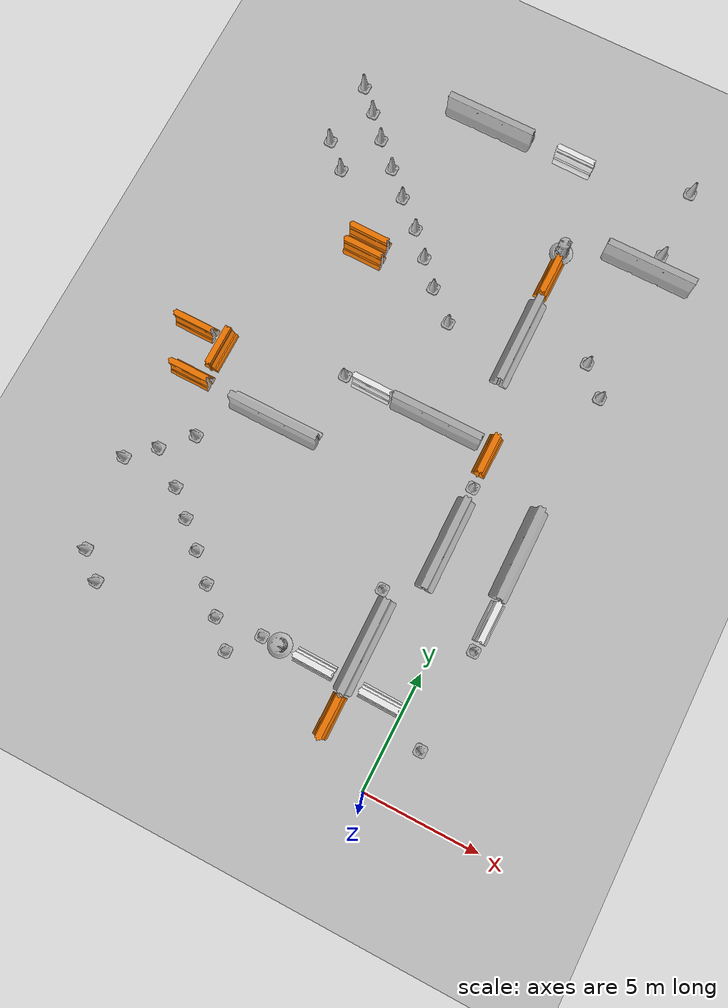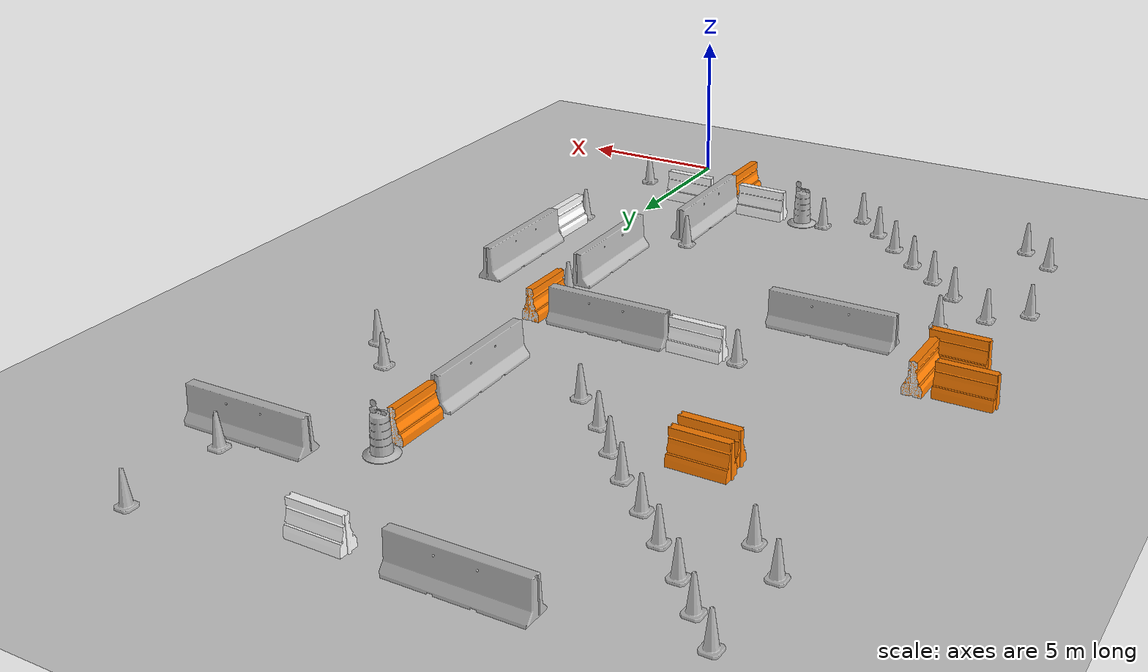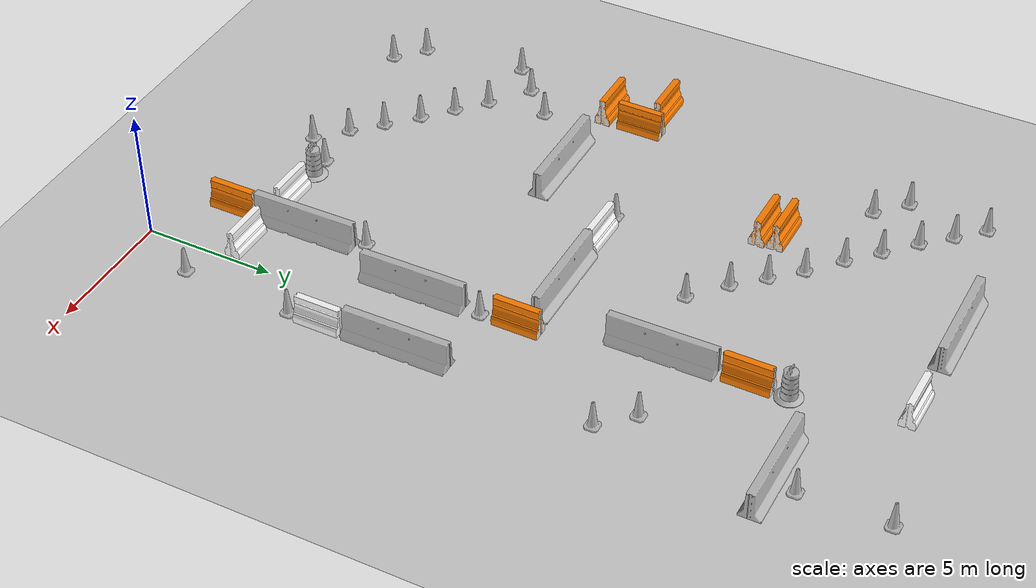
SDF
<sdf version="1.6">
 <world name="default">
  <model name="ground_plane">
   <static>1</static>
   <link name="link">
    <collision name="collision">
     <geometry><plane><normal>0 0 1</normal><size>100 100</size></plane></geometry>
     <surface>
      <contact><collide_bitmask>65535</collide_bitmask></contact>
      <friction><ode><mu>100</mu><mu2>50</mu2></ode></friction>
     </surface>
    </collision>
    <visual name="visual">
     <cast_shadows>0</cast_shadows>
     <geometry><plane><normal>0 0 1</normal><size>100 100</size></plane></geometry>
     <material>
      <script><uri>file://media/materials/scripts/gazebo.material</uri><name>Gazebo/Grey</name></script>
     </material>
    </visual>
   </link>
  </model>
  <model name="jersey_barrier_clone_clone_clone_0_clone">
   <static>1</static>
   <link name="link">
    <visual name="visual">
     <geometry><mesh><uri>model://jersey_barrier/meshes/jersey_barrier.dae</uri></mesh></geometry>
    </visual>
    <collision name="upright">
     <pose>0 0 0.5715 0 -0 0</pose>
     <geometry><box><size>4.06542 0.3063 1.143</size></box></geometry>
    </collision>
    <collision name="base">
     <pose>0 0 0.032258 0 -0 0</pose>
     <geometry><box><size>4.06542 0.8107 0.064516</size></box></geometry>
    </collision>
    <collision name="base2">
     <pose>0 0 0.1 0 -0 0</pose>
     <geometry><box><size>4.06542 0.65 0.1</size></box></geometry>
    </collision>
    <collision name="base3">
     <pose>0 0 0.2 0 -0 0</pose>
     <geometry><box><size>4.06542 0.5 0.1</size></box></geometry>
    </collision>
    <collision name="left-angle">
     <pose>0 -0.224 0.2401 0.9 -0 0</pose>
     <geometry><box><size>4.06542 0.5 0.064516</size></box></geometry>
    </collision>
    <collision name="right-angle">
     <pose>0 0.224 0.2401 -0.9 0 0</pose>
     <geometry><box><size>4.06542 0.5 0.064516</size></box></geometry>
    </collision>
   </link>
   <pose>-7.93875 27.5109 0 0 -0 0</pose>
  </model>
  <model name="drc_practice_white_jersey_barrier_clone_clone_clone_clone_clone">
   <static>1</static>
   <link name="link">
    <visual name="visual">
     <geometry>
      <mesh><uri>model://drc_practice_white_jersey_barrier/meshes/jersey_barrier.dae</uri></mesh>
     </geometry>
    </visual>
    <collision name="collision">
     <geometry>
      <mesh><uri>model://drc_practice_white_jersey_barrier/meshes/jersey_barrier.dae</uri></mesh>
     </geometry>
    </collision>
   </link>
   <pose>-3.85344 27.4585 0 0 0 -1.58176</pose>
  </model>
  <model name="Construction Cone_0_clone_0_clone_clone">
   <static>1</static>
   <link name="link">
    <collision name="collision">
     <geometry>
      <mesh><scale>10 10 10</scale><uri>model://construction_cone/meshes/construction_cone.dae</uri></mesh>
     </geometry>
    </collision>
    <visual name="visual">
     <geometry>
      <mesh><scale>10 10 10</scale><uri>model://construction_cone/meshes/construction_cone.dae</uri></mesh>
     </geometry>
    </visual>
    <inertial>
     <inertia><ixx>1</ixx><ixy>0</ixy><ixz>0</ixz><iyy>1</iyy><iyz>0</iyz><izz>1</izz></inertia>
     <mass>1</mass>
    </inertial>
   </link>
   <pose>1.27357 28.5519 -0 0 -0 0</pose>
  </model>
  <model name="Construction Cone_0_clone_0_clone_clone_clone">
   <static>1</static>
   <link name="link">
    <collision name="collision">
     <geometry>
      <mesh><scale>10 10 10</scale><uri>model://construction_cone/meshes/construction_cone.dae</uri></mesh>
     </geometry>
    </collision>
    <visual name="visual">
     <geometry>
      <mesh><scale>10 10 10</scale><uri>model://construction_cone/meshes/construction_cone.dae</uri></mesh>
     </geometry>
    </visual>
    <inertial>
     <inertia><ixx>1</ixx><ixy>0</ixy><ixz>0</ixz><iyy>1</iyy><iyz>0</iyz><izz>1</izz></inertia>
     <mass>1</mass>
    </inertial>
   </link>
   <pose>1.32461 25.334 -0 0 -0 0</pose>
  </model>
  <model name="jersey_barrier_clone_clone_clone_0_clone_clone">
   <static>1</static>
   <link name="link">
    <visual name="visual">
     <geometry><mesh><uri>model://jersey_barrier/meshes/jersey_barrier.dae</uri></mesh></geometry>
    </visual>
    <collision name="upright">
     <pose>0 0 0.5715 0 -0 0</pose>
     <geometry><box><size>4.06542 0.3063 1.143</size></box></geometry>
    </collision>
    <collision name="base">
     <pose>0 0 0.032258 0 -0 0</pose>
     <geometry><box><size>4.06542 0.8107 0.064516</size></box></geometry>
    </collision>
    <collision name="base2">
     <pose>0 0 0.1 0 -0 0</pose>
     <geometry><box><size>4.06542 0.65 0.1</size></box></geometry>
    </collision>
    <collision name="base3">
     <pose>0 0 0.2 0 -0 0</pose>
     <geometry><box><size>4.06542 0.5 0.1</size></box></geometry>
    </collision>
    <collision name="left-angle">
     <pose>0 -0.224 0.2401 0.9 -0 0</pose>
     <geometry><box><size>4.06542 0.5 0.064516</size></box></geometry>
    </collision>
    <collision name="right-angle">
     <pose>0 0.224 0.2401 -0.9 0 0</pose>
     <geometry><box><size>4.06542 0.5 0.064516</size></box></geometry>
    </collision>
   </link>
   <pose>1.0354 24.4748 0 0 -0 0</pose>
  </model>
  <model name="jersey_barrier_clone_clone_clone_clone_clone_clone_clone_clone_clone">
   <static>1</static>
   <link name="link">
    <visual name="visual">
     <geometry><mesh><uri>model://jersey_barrier/meshes/jersey_barrier.dae</uri></mesh></geometry>
    </visual>
    <collision name="upright">
     <pose>0 0 0.5715 0 -0 0</pose>
     <geometry><box><size>4.06542 0.3063 1.143</size></box></geometry>
    </collision>
    <collision name="base">
     <pose>0 0 0.032258 0 -0 0</pose>
     <geometry><box><size>4.06542 0.8107 0.064516</size></box></geometry>
    </collision>
    <collision name="base2">
     <pose>0 0 0.1 0 -0 0</pose>
     <geometry><box><size>4.06542 0.65 0.1</size></box></geometry>
    </collision>
    <collision name="base3">
     <pose>0 0 0.2 0 -0 0</pose>
     <geometry><box><size>4.06542 0.5 0.1</size></box></geometry>
    </collision>
    <collision name="left-angle">
     <pose>0 -0.224 0.2401 0.9 -0 0</pose>
     <geometry><box><size>4.06542 0.5 0.064516</size></box></geometry>
    </collision>
    <collision name="right-angle">
     <pose>0 0.224 0.2401 -0.9 0 0</pose>
     <geometry><box><size>4.06542 0.5 0.064516</size></box></geometry>
    </collision>
   </link>
   <pose>1.3892 10.9889 0 0 0 -1.56391</pose>
  </model>
  <model name="drc_practice_white_jersey_barrier_clone_clone_clone_0_clone_0_clone_clone_0_clone">
   <static>1</static>
   <link name="link">
    <visual name="visual">
     <geometry>
      <mesh><uri>model://drc_practice_white_jersey_barrier/meshes/jersey_barrier.dae</uri></mesh>
     </geometry>
    </visual>
    <collision name="collision">
     <geometry>
      <mesh><uri>model://drc_practice_white_jersey_barrier/meshes/jersey_barrier.dae</uri></mesh>
     </geometry>
    </collision>
   </link>
   <pose>1.49 7.98868 0 0 -0 3.13979</pose>
  </model>
  <model name="Construction Cone_0_clone_0_clone_clone_clone_clone_clone_3_clone_0_clone_clone_clone_1_clone_1_clone_5_clone">
   <static>1</static>
   <link name="link">
    <collision name="collision">
     <geometry>
      <mesh><scale>10 10 10</scale><uri>model://construction_cone/meshes/construction_cone.dae</uri></mesh>
     </geometry>
    </collision>
    <visual name="visual">
     <geometry>
      <mesh><scale>10 10 10</scale><uri>model://construction_cone/meshes/construction_cone.dae</uri></mesh>
     </geometry>
    </visual>
    <inertial>
     <inertia><ixx>1</ixx><ixy>0</ixy><ixz>0</ixz><iyy>1</iyy><iyz>0</iyz><izz>1</izz></inertia>
     <mass>1</mass>
    </inertial>
   </link>
   <pose>1.47181 6.73869 -0 0 -1e-06 0</pose>
  </model>
  <model name="jersey_barrier_clone_clone_clone_clone_clone_clone_clone_clone_clone_clone">
   <static>1</static>
   <link name="link">
    <visual name="visual">
     <geometry><mesh><uri>model://jersey_barrier/meshes/jersey_barrier.dae</uri></mesh></geometry>
    </visual>
    <collision name="upright">
     <pose>0 0 0.5715 0 -0 0</pose>
     <geometry><box><size>4.06542 0.3063 1.143</size></box></geometry>
    </collision>
    <collision name="base">
     <pose>0 0 0.032258 0 -0 0</pose>
     <geometry><box><size>4.06542 0.8107 0.064516</size></box></geometry>
    </collision>
    <collision name="base2">
     <pose>0 0 0.1 0 -0 0</pose>
     <geometry><box><size>4.06542 0.65 0.1</size></box></geometry>
    </collision>
    <collision name="base3">
     <pose>0 0 0.2 0 -0 0</pose>
     <geometry><box><size>4.06542 0.5 0.1</size></box></geometry>
    </collision>
    <collision name="left-angle">
     <pose>0 -0.224 0.2401 0.9 -0 0</pose>
     <geometry><box><size>4.06542 0.5 0.064516</size></box></geometry>
    </collision>
    <collision name="right-angle">
     <pose>0 0.224 0.2401 -0.9 0 0</pose>
     <geometry><box><size>4.06542 0.5 0.064516</size></box></geometry>
    </collision>
   </link>
   <pose>-1.43507 10.0191 0 0 0 -1.56391</pose>
  </model>
  <model name="drc_practice_organge_jersey_barrier_clone_clone_0_clone_0_clone_2_clone">
   <static>1</static>
   <link name="link">
    <visual name="visual">
     <geometry>
      <mesh><uri>model://drc_practice_orange_jersey_barrier/meshes/jersey_barrier.dae</uri></mesh>
     </geometry>
    </visual>
    <collision name="collision">
     <geometry>
      <mesh><uri>model://drc_practice_orange_jersey_barrier/meshes/jersey_barrier.dae</uri></mesh>
     </geometry>
    </collision>
   </link>
   <pose>-1.5104 14.0475 0 0 -0 0</pose>
  </model>
  <model name="Construction Cone_0_clone_0_clone_clone_clone_clone_clone_3_clone_0_clone_clone_clone_1_clone_1_clone_5_clone_0_clone">
   <static>1</static>
   <link name="link">
    <collision name="collision">
     <geometry>
      <mesh><scale>10 10 10</scale><uri>model://construction_cone/meshes/construction_cone.dae</uri></mesh>
     </geometry>
    </collision>
    <visual name="visual">
     <geometry>
      <mesh><scale>10 10 10</scale><uri>model://construction_cone/meshes/construction_cone.dae</uri></mesh>
     </geometry>
    </visual>
    <inertial>
     <inertia><ixx>1</ixx><ixy>0</ixy><ixz>0</ixz><iyy>1</iyy><iyz>0</iyz><izz>1</izz></inertia>
     <mass>1</mass>
    </inertial>
   </link>
   <pose>-1.45604 12.6179 -0 0 -0 0</pose>
  </model>
  <model name="jersey_barrier_clone_clone_clone_0_clone_clone_clone_clone_0">
   <static>1</static>
   <link name="link">
    <visual name="visual">
     <geometry><mesh><uri>model://jersey_barrier/meshes/jersey_barrier.dae</uri></mesh></geometry>
    </visual>
    <collision name="upright">
     <pose>0 0 0.5715 0 -0 0</pose>
     <geometry><box><size>4.06542 0.3063 1.143</size></box></geometry>
    </collision>
    <collision name="base">
     <pose>0 0 0.032258 0 -0 0</pose>
     <geometry><box><size>4.06542 0.8107 0.064516</size></box></geometry>
    </collision>
    <collision name="base2">
     <pose>0 0 0.1 0 -0 0</pose>
     <geometry><box><size>4.06542 0.65 0.1</size></box></geometry>
    </collision>
    <collision name="base3">
     <pose>0 0 0.2 0 -0 0</pose>
     <geometry><box><size>4.06542 0.5 0.1</size></box></geometry>
    </collision>
    <collision name="left-angle">
     <pose>0 -0.224 0.2401 0.9 -0 0</pose>
     <geometry><box><size>4.06542 0.5 0.064516</size></box></geometry>
    </collision>
    <collision name="right-angle">
     <pose>0 0.224 0.2401 -0.9 0 0</pose>
     <geometry><box><size>4.06542 0.5 0.064516</size></box></geometry>
    </collision>
   </link>
   <pose>-4.03544 14.47 0 0 -0 0</pose>
  </model>
  <model name="drc_practice_white_jersey_barrier_clone_clone_clone_clone_clone_clone_clone_clone_clone_clone">
   <static>1</static>
   <link name="link">
    <visual name="visual">
     <geometry>
      <mesh><uri>model://drc_practice_white_jersey_barrier/meshes/jersey_barrier.dae</uri></mesh>
     </geometry>
    </visual>
    <collision name="collision">
     <geometry>
      <mesh><uri>model://drc_practice_white_jersey_barrier/meshes/jersey_barrier.dae</uri></mesh>
     </geometry>
    </collision>
   </link>
   <pose>-7.02001 14.464 0 0 0 -1.58176</pose>
  </model>
  <model name="Construction Cone_0_clone_0_clone_clone_clone_clone_clone_3_clone_0_clone_clone_clone_1_clone_1_clone_5_clone_0_clone_clone">
   <static>1</static>
   <link name="link">
    <collision name="collision">
     <geometry>
      <mesh><scale>10 10 10</scale><uri>model://construction_cone/meshes/construction_cone.dae</uri></mesh>
     </geometry>
    </collision>
    <visual name="visual">
     <geometry>
      <mesh><scale>10 10 10</scale><uri>model://construction_cone/meshes/construction_cone.dae</uri></mesh>
     </geometry>
    </visual>
    <inertial>
     <inertia><ixx>1</ixx><ixy>0</ixy><ixz>0</ixz><iyy>1</iyy><iyz>0</iyz><izz>1</izz></inertia>
     <mass>1</mass>
    </inertial>
   </link>
   <pose>-8.33243 14.4629 -1e-05 -1e-06 0 0</pose>
  </model>
  <model name="jersey_barrier_clone_clone_clone_clone_clone_clone_clone_clone_clone_clone_clone">
   <static>1</static>
   <link name="link">
    <visual name="visual">
     <geometry><mesh><uri>model://jersey_barrier/meshes/jersey_barrier.dae</uri></mesh></geometry>
    </visual>
    <collision name="upright">
     <pose>0 0 0.5715 0 -0 0</pose>
     <geometry><box><size>4.06542 0.3063 1.143</size></box></geometry>
    </collision>
    <collision name="base">
     <pose>0 0 0.032258 0 -0 0</pose>
     <geometry><box><size>4.06542 0.8107 0.064516</size></box></geometry>
    </collision>
    <collision name="base2">
     <pose>0 0 0.1 0 -0 0</pose>
     <geometry><box><size>4.06542 0.65 0.1</size></box></geometry>
    </collision>
    <collision name="base3">
     <pose>0 0 0.2 0 -0 0</pose>
     <geometry><box><size>4.06542 0.5 0.1</size></box></geometry>
    </collision>
    <collision name="left-angle">
     <pose>0 -0.224 0.2401 0.9 -0 0</pose>
     <geometry><box><size>4.06542 0.5 0.064516</size></box></geometry>
    </collision>
    <collision name="right-angle">
     <pose>0 0.224 0.2401 -0.9 0 0</pose>
     <geometry><box><size>4.06542 0.5 0.064516</size></box></geometry>
    </collision>
   </link>
   <pose>-2.48944 4.9764 0 0 0 -1.56391</pose>
  </model>
  <model name="Construction Cone_0_clone_0_clone_clone_clone_clone_clone_3_clone_0_clone_clone_clone_1_clone_1_clone_5_clone_clone">
   <static>1</static>
   <link name="link">
    <collision name="collision">
     <geometry>
      <mesh><scale>10 10 10</scale><uri>model://construction_cone/meshes/construction_cone.dae</uri></mesh>
     </geometry>
    </collision>
    <visual name="visual">
     <geometry>
      <mesh><scale>10 10 10</scale><uri>model://construction_cone/meshes/construction_cone.dae</uri></mesh>
     </geometry>
    </visual>
    <inertial>
     <inertia><ixx>1</ixx><ixy>0</ixy><ixz>0</ixz><iyy>1</iyy><iyz>0</iyz><izz>1</izz></inertia>
     <mass>1</mass>
    </inertial>
   </link>
   <pose>-2.8795 7.26415 -0 0 -0 0</pose>
  </model>
  <model name="drc_practice_organge_jersey_barrier_clone_clone_0_clone_0_clone_0_clone">
   <static>1</static>
   <link name="link">
    <visual name="visual">
     <geometry>
      <mesh><uri>model://drc_practice_orange_jersey_barrier/meshes/jersey_barrier.dae</uri></mesh>
     </geometry>
    </visual>
    <collision name="collision">
     <geometry>
      <mesh><uri>model://drc_practice_orange_jersey_barrier/meshes/jersey_barrier.dae</uri></mesh>
     </geometry>
    </collision>
   </link>
   <pose>-2.46701 1.9731 0 0 -0 0</pose>
  </model>
  <model name="drc_practice_white_jersey_barrier_clone_clone_clone_clone_clone_clone_clone_clone_clone_clone_0">
   <static>1</static>
   <link name="link">
    <visual name="visual">
     <geometry>
      <mesh><uri>model://drc_practice_white_jersey_barrier/meshes/jersey_barrier.dae</uri></mesh>
     </geometry>
    </visual>
    <collision name="collision">
     <geometry>
      <mesh><uri>model://drc_practice_white_jersey_barrier/meshes/jersey_barrier.dae</uri></mesh>
     </geometry>
    </collision>
   </link>
   <pose>-0.998453 3.39951 0 0 0 -1.58176</pose>
  </model>
  <model name="Construction Cone_0_clone_0_clone_clone_clone_clone_clone_3_clone_0_clone_clone_clone_1_clone_1_clone_clone_clone_0_clone_0">
   <static>1</static>
   <link name="link">
    <collision name="collision">
     <geometry>
      <mesh><scale>10 10 10</scale><uri>model://construction_cone/meshes/construction_cone.dae</uri></mesh>
     </geometry>
    </collision>
    <visual name="visual">
     <geometry>
      <mesh><scale>10 10 10</scale><uri>model://construction_cone/meshes/construction_cone.dae</uri></mesh>
     </geometry>
    </visual>
    <inertial>
     <inertia><ixx>1</ixx><ixy>0</ixy><ixz>0</ixz><iyy>1</iyy><iyz>0</iyz><izz>1</izz></inertia>
     <mass>1</mass>
    </inertial>
   </link>
   <pose>1.28237 2.39427 -0 0 -1e-06 -0.001073</pose>
  </model>
  <model name="drc_practice_organge_jersey_barrier_clone_clone_0_clone">
   <static>1</static>
   <link name="link">
    <visual name="visual">
     <geometry>
      <mesh><uri>model://drc_practice_orange_jersey_barrier/meshes/jersey_barrier.dae</uri></mesh>
     </geometry>
    </visual>
    <collision name="collision">
     <geometry>
      <mesh><uri>model://drc_practice_orange_jersey_barrier/meshes/jersey_barrier.dae</uri></mesh>
     </geometry>
    </collision>
   </link>
   <pose>-2.53044 22.104 0 0 -0 0</pose>
  </model>
  <model name="Construction Barrel_clone_clone_0_clone_clone_1_clone">
   <static>1</static>
   <link name="link">
    <inertial>
     <pose>0 0 0.4 0 -0 0</pose>
     <mass>500</mass>
     <inertia><ixx>51.2096</ixx><iyy>51.2096</iyy><izz>25</izz><ixy>0</ixy><ixz>0</ixz><iyz>0</iyz></inertia>
    </inertial>
    <collision name="collision">
     <geometry><mesh><uri>model://construction_barrel/meshes/construction_barrel.dae</uri></mesh></geometry>
    </collision>
    <visual name="visual">
     <geometry><mesh><uri>model://construction_barrel/meshes/construction_barrel.dae</uri></mesh></geometry>
    </visual>
   </link>
   <pose>-2.5725 23.5251 -0 0 0 -0.001453</pose>
  </model>
  <model name="jersey_barrier_clone_clone_clone_clone_clone_clone_clone_clone_clone_clone_clone_0">
   <static>1</static>
   <link name="link">
    <visual name="visual">
     <geometry><mesh><uri>model://jersey_barrier/meshes/jersey_barrier.dae</uri></mesh></geometry>
    </visual>
    <collision name="upright">
     <pose>0 0 0.5715 0 -0 0</pose>
     <geometry><box><size>4.06542 0.3063 1.143</size></box></geometry>
    </collision>
    <collision name="base">
     <pose>0 0 0.032258 0 -0 0</pose>
     <geometry><box><size>4.06542 0.8107 0.064516</size></box></geometry>
    </collision>
    <collision name="base2">
     <pose>0 0 0.1 0 -0 0</pose>
     <geometry><box><size>4.06542 0.65 0.1</size></box></geometry>
    </collision>
    <collision name="base3">
     <pose>0 0 0.2 0 -0 0</pose>
     <geometry><box><size>4.06542 0.5 0.1</size></box></geometry>
    </collision>
    <collision name="left-angle">
     <pose>0 -0.224 0.2401 0.9 -0 0</pose>
     <geometry><box><size>4.06542 0.5 0.064516</size></box></geometry>
    </collision>
    <collision name="right-angle">
     <pose>0 0.224 0.2401 -0.9 0 0</pose>
     <geometry><box><size>4.06542 0.5 0.064516</size></box></geometry>
    </collision>
   </link>
   <pose>-2.47212 19.0029 0 0 0 -1.56391</pose>
  </model>
  <model name="Construction Cone_0_clone_0_clone_clone_clone_clone_clone_3_clone_0_clone_clone_clone_1_clone_1_clone_6_clone">
   <static>1</static>
   <link name="link">
    <collision name="collision">
     <geometry>
      <mesh><scale>10 10 10</scale><uri>model://construction_cone/meshes/construction_cone.dae</uri></mesh>
     </geometry>
    </collision>
    <visual name="visual">
     <geometry>
      <mesh><scale>10 10 10</scale><uri>model://construction_cone/meshes/construction_cone.dae</uri></mesh>
     </geometry>
    </visual>
    <inertial>
     <inertia><ixx>1</ixx><ixy>0</ixy><ixz>0</ixz><iyy>1</iyy><iyz>0</iyz><izz>1</izz></inertia>
     <mass>1</mass>
    </inertial>
   </link>
   <pose>0.500758 19.533 -0 0 -0 0</pose>
  </model>
  <model name="Construction Cone_0_clone_0_clone_clone_clone_clone_clone_3_clone_0_clone_clone_clone_1_clone_1_clone_6_clone_0">
   <static>1</static>
   <link name="link">
    <collision name="collision">
     <geometry>
      <mesh><scale>10 10 10</scale><uri>model://construction_cone/meshes/construction_cone.dae</uri></mesh>
     </geometry>
    </collision>
    <visual name="visual">
     <geometry>
      <mesh><scale>10 10 10</scale><uri>model://construction_cone/meshes/construction_cone.dae</uri></mesh>
     </geometry>
    </visual>
    <inertial>
     <inertia><ixx>1</ixx><ixy>0</ixy><ixz>0</ixz><iyy>1</iyy><iyz>0</iyz><izz>1</izz></inertia>
     <mass>1</mass>
    </inertial>
   </link>
   <pose>1.59266 18.4058 -0 0 -1e-06 0</pose>
  </model>
  <model name="Construction Cone_0_clone_0_clone_clone_clone_clone_clone_3_clone_0_clone_clone_clone_1_clone_1_clone_6_clone_clone">
   <static>1</static>
   <link name="link">
    <collision name="collision">
     <geometry>
      <mesh><scale>10 10 10</scale><uri>model://construction_cone/meshes/construction_cone.dae</uri></mesh>
     </geometry>
    </collision>
    <visual name="visual">
     <geometry>
      <mesh><scale>10 10 10</scale><uri>model://construction_cone/meshes/construction_cone.dae</uri></mesh>
     </geometry>
    </visual>
    <inertial>
     <inertia><ixx>1</ixx><ixy>0</ixy><ixz>0</ixz><iyy>1</iyy><iyz>0</iyz><izz>1</izz></inertia>
     <mass>1</mass>
    </inertial>
   </link>
   <pose>-5.51116 18.4911 -0 0 -1e-06 0</pose>
  </model>
  <model name="Construction Cone_0_clone_0_clone_clone_clone_clone_clone_3_clone_0_clone_clone_clone_1_clone_1_clone_6_clone_clone_0">
   <static>1</static>
   <link name="link">
    <collision name="collision">
     <geometry>
      <mesh><scale>10 10 10</scale><uri>model://construction_cone/meshes/construction_cone.dae</uri></mesh>
     </geometry>
    </collision>
    <visual name="visual">
     <geometry>
      <mesh><scale>10 10 10</scale><uri>model://construction_cone/meshes/construction_cone.dae</uri></mesh>
     </geometry>
    </visual>
    <inertial>
     <inertia><ixx>1</ixx><ixy>0</ixy><ixz>0</ixz><iyy>1</iyy><iyz>0</iyz><izz>1</izz></inertia>
     <mass>1</mass>
    </inertial>
   </link>
   <pose>-6.76308 19.5995 -0 -0 -0 -0</pose>
  </model>
  <model name="Construction Cone_0_clone_0_clone_clone_clone_clone_clone_3_clone_0_clone_clone_clone_1_clone_1_clone_6_clone_clone_1">
   <static>1</static>
   <link name="link">
    <collision name="collision">
     <geometry>
      <mesh><scale>10 10 10</scale><uri>model://construction_cone/meshes/construction_cone.dae</uri></mesh>
     </geometry>
    </collision>
    <visual name="visual">
     <geometry>
      <mesh><scale>10 10 10</scale><uri>model://construction_cone/meshes/construction_cone.dae</uri></mesh>
     </geometry>
    </visual>
    <inertial>
     <inertia><ixx>1</ixx><ixy>0</ixy><ixz>0</ixz><iyy>1</iyy><iyz>0</iyz><izz>1</izz></inertia>
     <mass>1</mass>
    </inertial>
   </link>
   <pose>-7.72198 20.6382 -0 0 -1e-06 0</pose>
  </model>
  <model name="Construction Cone_0_clone_0_clone_clone_clone_clone_clone_3_clone_0_clone_clone_clone_1_clone_1_clone_6_clone_clone_2">
   <static>1</static>
   <link name="link">
    <collision name="collision">
     <geometry>
      <mesh><scale>10 10 10</scale><uri>model://construction_cone/meshes/construction_cone.dae</uri></mesh>
     </geometry>
    </collision>
    <visual name="visual">
     <geometry>
      <mesh><scale>10 10 10</scale><uri>model://construction_cone/meshes/construction_cone.dae</uri></mesh>
     </geometry>
    </visual>
    <inertial>
     <inertia><ixx>1</ixx><ixy>0</ixy><ixz>0</ixz><iyy>1</iyy><iyz>0</iyz><izz>1</izz></inertia>
     <mass>1</mass>
    </inertial>
   </link>
   <pose>-8.65657 21.651 -0 0 -0 0</pose>
  </model>
  <model name="Construction Cone_0_clone_0_clone_clone_clone_clone_clone_3_clone_0_clone_clone_clone_1_clone_1_clone_6_clone_clone_3">
   <static>1</static>
   <link name="link">
    <collision name="collision">
     <geometry>
      <mesh><scale>10 10 10</scale><uri>model://construction_cone/meshes/construction_cone.dae</uri></mesh>
     </geometry>
    </collision>
    <visual name="visual">
     <geometry>
      <mesh><scale>10 10 10</scale><uri>model://construction_cone/meshes/construction_cone.dae</uri></mesh>
     </geometry>
    </visual>
    <inertial>
     <inertia><ixx>1</ixx><ixy>0</ixy><ixz>0</ixz><iyy>1</iyy><iyz>0</iyz><izz>1</izz></inertia>
     <mass>1</mass>
    </inertial>
   </link>
   <pose>-9.81088 22.6881 -0 0 -0 0</pose>
  </model>
  <model name="Construction Cone_0_clone_0_clone_clone_clone_clone_clone_3_clone_0_clone_clone_clone_1_clone_1_clone_6_clone_clone_4">
   <static>1</static>
   <link name="link">
    <collision name="collision">
     <geometry>
      <mesh><scale>10 10 10</scale><uri>model://construction_cone/meshes/construction_cone.dae</uri></mesh>
     </geometry>
    </collision>
    <visual name="visual">
     <geometry>
      <mesh><scale>10 10 10</scale><uri>model://construction_cone/meshes/construction_cone.dae</uri></mesh>
     </geometry>
    </visual>
    <inertial>
     <inertia><ixx>1</ixx><ixy>0</ixy><ixz>0</ixz><iyy>1</iyy><iyz>0</iyz><izz>1</izz></inertia>
     <mass>1</mass>
    </inertial>
   </link>
   <pose>-10.8431 23.7003 -0 -0 -0 -0</pose>
  </model>
  <model name="Construction Cone_0_clone_0_clone_clone_clone_clone_clone_3_clone_0_clone_clone_clone_1_clone_1_clone_6_clone_clone_5">
   <static>1</static>
   <link name="link">
    <collision name="collision">
     <geometry>
      <mesh><scale>10 10 10</scale><uri>model://construction_cone/meshes/construction_cone.dae</uri></mesh>
     </geometry>
    </collision>
    <visual name="visual">
     <geometry>
      <mesh><scale>10 10 10</scale><uri>model://construction_cone/meshes/construction_cone.dae</uri></mesh>
     </geometry>
    </visual>
    <inertial>
     <inertia><ixx>1</ixx><ixy>0</ixy><ixz>0</ixz><iyy>1</iyy><iyz>0</iyz><izz>1</izz></inertia>
     <mass>1</mass>
    </inertial>
   </link>
   <pose>-11.8995 24.7132 -0 -0 -0 -0</pose>
  </model>
  <model name="Construction Cone_0_clone_0_clone_clone_clone_clone_clone_3_clone_0_clone_clone_clone_1_clone_1_clone_6_clone_clone_6">
   <static>1</static>
   <link name="link">
    <collision name="collision">
     <geometry>
      <mesh><scale>10 10 10</scale><uri>model://construction_cone/meshes/construction_cone.dae</uri></mesh>
     </geometry>
    </collision>
    <visual name="visual">
     <geometry>
      <mesh><scale>10 10 10</scale><uri>model://construction_cone/meshes/construction_cone.dae</uri></mesh>
     </geometry>
    </visual>
    <inertial>
     <inertia><ixx>1</ixx><ixy>0</ixy><ixz>0</ixz><iyy>1</iyy><iyz>0</iyz><izz>1</izz></inertia>
     <mass>1</mass>
    </inertial>
   </link>
   <pose>-12.81 25.7033 -0 0 -0 0</pose>
  </model>
  <model name="Construction Cone_0_clone_0_clone_clone_clone_clone_clone_3_clone_0_clone_clone_clone_1_clone_1_clone_6_clone_clone_7">
   <static>1</static>
   <link name="link">
    <collision name="collision">
     <geometry>
      <mesh><scale>10 10 10</scale><uri>model://construction_cone/meshes/construction_cone.dae</uri></mesh>
     </geometry>
    </collision>
    <visual name="visual">
     <geometry>
      <mesh><scale>10 10 10</scale><uri>model://construction_cone/meshes/construction_cone.dae</uri></mesh>
     </geometry>
    </visual>
    <inertial>
     <inertia><ixx>1</ixx><ixy>0</ixy><ixz>0</ixz><iyy>1</iyy><iyz>0</iyz><izz>1</izz></inertia>
     <mass>1</mass>
    </inertial>
   </link>
   <pose>-13.7204 26.6445 -0 0 -0 0</pose>
  </model>
  <model name="Construction Cone_0_clone_0_clone_clone_clone_clone_clone_3_clone_0_clone_clone_clone_1_clone_1_clone_6_clone_clone_3_clone">
   <static>1</static>
   <link name="link">
    <collision name="collision">
     <geometry>
      <mesh><scale>10 10 10</scale><uri>model://construction_cone/meshes/construction_cone.dae</uri></mesh>
     </geometry>
    </collision>
    <visual name="visual">
     <geometry>
      <mesh><scale>10 10 10</scale><uri>model://construction_cone/meshes/construction_cone.dae</uri></mesh>
     </geometry>
    </visual>
    <inertial>
     <inertia><ixx>1</ixx><ixy>0</ixy><ixz>0</ixz><iyy>1</iyy><iyz>0</iyz><izz>1</izz></inertia>
     <mass>1</mass>
    </inertial>
   </link>
   <pose>-12.8057 22.6462 -0 0 -0 0</pose>
  </model>
  <model name="Construction Cone_0_clone_0_clone_clone_clone_clone_clone_3_clone_0_clone_clone_clone_1_clone_1_clone_6_clone_clone_3_clone_0">
   <static>1</static>
   <link name="link">
    <collision name="collision">
     <geometry>
      <mesh><scale>10 10 10</scale><uri>model://construction_cone/meshes/construction_cone.dae</uri></mesh>
     </geometry>
    </collision>
    <visual name="visual">
     <geometry>
      <mesh><scale>10 10 10</scale><uri>model://construction_cone/meshes/construction_cone.dae</uri></mesh>
     </geometry>
    </visual>
    <inertial>
     <inertia><ixx>1</ixx><ixy>0</ixy><ixz>0</ixz><iyy>1</iyy><iyz>0</iyz><izz>1</izz></inertia>
     <mass>1</mass>
    </inertial>
   </link>
   <pose>-13.863 23.6586 -0 0 -1e-06 0</pose>
  </model>
  <model name="drc_practice_organge_jersey_barrier_clone_clone_clone_1">
   <static>1</static>
   <link name="link">
    <visual name="visual">
     <geometry>
      <mesh><uri>model://drc_practice_orange_jersey_barrier/meshes/jersey_barrier.dae</uri></mesh>
     </geometry>
    </visual>
    <collision name="collision">
     <geometry>
      <mesh><uri>model://drc_practice_orange_jersey_barrier/meshes/jersey_barrier.dae</uri></mesh>
     </geometry>
    </collision>
   </link>
   <pose>-10.1534 20.2607 0 0 0 -1.57472</pose>
  </model>
  <model name="drc_practice_organge_jersey_barrier_clone_clone_clone_2">
   <static>1</static>
   <link name="link">
    <visual name="visual">
     <geometry>
      <mesh><uri>model://drc_practice_orange_jersey_barrier/meshes/jersey_barrier.dae</uri></mesh>
     </geometry>
    </visual>
    <collision name="collision">
     <geometry>
      <mesh><uri>model://drc_practice_orange_jersey_barrier/meshes/jersey_barrier.dae</uri></mesh>
     </geometry>
    </collision>
   </link>
   <pose>-10.074 19.5796 0 0 0 -1.57472</pose>
  </model>
  <model name="drc_practice_organge_jersey_barrier_clone_clone_clone_2_clone">
   <static>1</static>
   <link name="link">
    <visual name="visual">
     <geometry>
      <mesh><uri>model://drc_practice_orange_jersey_barrier/meshes/jersey_barrier.dae</uri></mesh>
     </geometry>
    </visual>
    <collision name="collision">
     <geometry>
      <mesh><uri>model://drc_practice_orange_jersey_barrier/meshes/jersey_barrier.dae</uri></mesh>
     </geometry>
    </collision>
   </link>
   <pose>-14.8507 13.4802 0 0 0 -1.57472</pose>
  </model>
  <model name="drc_practice_organge_jersey_barrier_clone_clone_0_clone_0_clone_2_clone_0">
   <static>1</static>
   <link name="link">
    <visual name="visual">
     <geometry>
      <mesh><uri>model://drc_practice_orange_jersey_barrier/meshes/jersey_barrier.dae</uri></mesh>
     </geometry>
    </visual>
    <collision name="collision">
     <geometry>
      <mesh><uri>model://drc_practice_orange_jersey_barrier/meshes/jersey_barrier.dae</uri></mesh>
     </geometry>
    </collision>
   </link>
   <pose>-13.4541 13.0508 0 0 -0 0</pose>
  </model>
  <model name="drc_practice_organge_jersey_barrier_clone_clone_clone_2_clone_0">
   <static>1</static>
   <link name="link">
    <visual name="visual">
     <geometry>
      <mesh><uri>model://drc_practice_orange_jersey_barrier/meshes/jersey_barrier.dae</uri></mesh>
     </geometry>
    </visual>
    <collision name="collision">
     <geometry>
      <mesh><uri>model://drc_practice_orange_jersey_barrier/meshes/jersey_barrier.dae</uri></mesh>
     </geometry>
    </collision>
   </link>
   <pose>-14.0097 11.5788 0 0 0 -1.57472</pose>
  </model>
  <model name="Construction Cone_0_clone_0_clone_clone_clone_clone_clone_3_clone_0_clone_clone_clone_1_clone_1_clone_6_clone_clone_3_clone_clone_clone">
   <static>1</static>
   <link name="link">
    <collision name="collision">
     <geometry>
      <mesh><scale>10 10 10</scale><uri>model://construction_cone/meshes/construction_cone.dae</uri></mesh>
     </geometry>
    </collision>
    <visual name="visual">
     <geometry>
      <mesh><scale>10 10 10</scale><uri>model://construction_cone/meshes/construction_cone.dae</uri></mesh>
     </geometry>
    </visual>
    <inertial>
     <inertia><ixx>1</ixx><ixy>0</ixy><ixz>0</ixz><iyy>1</iyy><iyz>0</iyz><izz>1</izz></inertia>
     <mass>1</mass>
    </inertial>
   </link>
   <pose>-12.6412 9.36835 -0 0 -0 0</pose>
  </model>
  <model name="Construction Cone_0_clone_0_clone_clone_clone_clone_clone_3_clone_0_clone_clone_clone_1_clone_1_clone_6_clone_clone_3_clone_clone_clone_0">
   <static>1</static>
   <link name="link">
    <collision name="collision">
     <geometry>
      <mesh><scale>10 10 10</scale><uri>model://construction_cone/meshes/construction_cone.dae</uri></mesh>
     </geometry>
    </collision>
    <visual name="visual">
     <geometry>
      <mesh><scale>10 10 10</scale><uri>model://construction_cone/meshes/construction_cone.dae</uri></mesh>
     </geometry>
    </visual>
    <inertial>
     <inertia><ixx>1</ixx><ixy>0</ixy><ixz>0</ixz><iyy>1</iyy><iyz>0</iyz><izz>1</izz></inertia>
     <mass>1</mass>
    </inertial>
   </link>
   <pose>-13.7686 8.2158 -0 0 -1e-06 0</pose>
  </model>
  <model name="Construction Cone_0_clone_0_clone_clone_clone_clone_clone_3_clone_0_clone_clone_clone_1_clone_1_clone_6_clone_clone_3_clone_clone_clone_1">
   <static>1</static>
   <link name="link">
    <collision name="collision">
     <geometry>
      <mesh><scale>10 10 10</scale><uri>model://construction_cone/meshes/construction_cone.dae</uri></mesh>
     </geometry>
    </collision>
    <visual name="visual">
     <geometry>
      <mesh><scale>10 10 10</scale><uri>model://construction_cone/meshes/construction_cone.dae</uri></mesh>
     </geometry>
    </visual>
    <inertial>
     <inertia><ixx>1</ixx><ixy>0</ixy><ixz>0</ixz><iyy>1</iyy><iyz>0</iyz><izz>1</izz></inertia>
     <mass>1</mass>
    </inertial>
   </link>
   <pose>-14.8529 7.23694 -0 0 -0 0</pose>
  </model>
  <model name="Construction Cone_0_clone_0_clone_clone_clone_clone_clone_3_clone_0_clone_clone_clone_1_clone_1_clone_6_clone_clone_3_clone_clone_clone_4">
   <static>1</static>
   <link name="link">
    <collision name="collision">
     <geometry>
      <mesh><scale>10 10 10</scale><uri>model://construction_cone/meshes/construction_cone.dae</uri></mesh>
     </geometry>
    </collision>
    <visual name="visual">
     <geometry>
      <mesh><scale>10 10 10</scale><uri>model://construction_cone/meshes/construction_cone.dae</uri></mesh>
     </geometry>
    </visual>
    <inertial>
     <inertia><ixx>1</ixx><ixy>0</ixy><ixz>0</ixz><iyy>1</iyy><iyz>0</iyz><izz>1</izz></inertia>
     <mass>1</mass>
    </inertial>
   </link>
   <pose>-12.3335 7.11005 -1e-05 0 -0 0</pose>
  </model>
  <model name="Construction Cone_0_clone_0_clone_clone_clone_clone_clone_3_clone_0_clone_clone_clone_1_clone_1_clone_6_clone_clone_3_clone_clone_clone_5">
   <static>1</static>
   <link name="link">
    <collision name="collision">
     <geometry>
      <mesh><scale>10 10 10</scale><uri>model://construction_cone/meshes/construction_cone.dae</uri></mesh>
     </geometry>
    </collision>
    <visual name="visual">
     <geometry>
      <mesh><scale>10 10 10</scale><uri>model://construction_cone/meshes/construction_cone.dae</uri></mesh>
     </geometry>
    </visual>
    <inertial>
     <inertia><ixx>1</ixx><ixy>0</ixy><ixz>0</ixz><iyy>1</iyy><iyz>0</iyz><izz>1</izz></inertia>
     <mass>1</mass>
    </inertial>
   </link>
   <pose>-11.3328 6.1778 0 -0 -0 -0</pose>
  </model>
  <model name="Construction Cone_0_clone_0_clone_clone_clone_clone_clone_3_clone_0_clone_clone_clone_1_clone_1_clone_6_clone_clone_3_clone_clone_clone_6">
   <static>1</static>
   <link name="link">
    <collision name="collision">
     <geometry>
      <mesh><scale>10 10 10</scale><uri>model://construction_cone/meshes/construction_cone.dae</uri></mesh>
     </geometry>
    </collision>
    <visual name="visual">
     <geometry>
      <mesh><scale>10 10 10</scale><uri>model://construction_cone/meshes/construction_cone.dae</uri></mesh>
     </geometry>
    </visual>
    <inertial>
     <inertia><ixx>1</ixx><ixy>0</ixy><ixz>0</ixz><iyy>1</iyy><iyz>0</iyz><izz>1</izz></inertia>
     <mass>1</mass>
    </inertial>
   </link>
   <pose>-10.3105 5.24591 -8e-06 1e-06 -0 0</pose>
  </model>
  <model name="Construction Cone_0_clone_0_clone_clone_clone_clone_clone_3_clone_0_clone_clone_clone_1_clone_1_clone_6_clone_clone_3_clone_clone_clone_7">
   <static>1</static>
   <link name="link">
    <collision name="collision">
     <geometry>
      <mesh><scale>10 10 10</scale><uri>model://construction_cone/meshes/construction_cone.dae</uri></mesh>
     </geometry>
    </collision>
    <visual name="visual">
     <geometry>
      <mesh><scale>10 10 10</scale><uri>model://construction_cone/meshes/construction_cone.dae</uri></mesh>
     </geometry>
    </visual>
    <inertial>
     <inertia><ixx>1</ixx><ixy>0</ixy><ixz>0</ixz><iyy>1</iyy><iyz>0</iyz><izz>1</izz></inertia>
     <mass>1</mass>
    </inertial>
   </link>
   <pose>-9.28813 4.24862 -0 0 -1e-06 0</pose>
  </model>
  <model name="Construction Cone_0_clone_0_clone_clone_clone_clone_clone_3_clone_0_clone_clone_clone_1_clone_1_clone_6_clone_clone_3_clone_clone_clone_8">
   <static>1</static>
   <link name="link">
    <collision name="collision">
     <geometry>
      <mesh><scale>10 10 10</scale><uri>model://construction_cone/meshes/construction_cone.dae</uri></mesh>
     </geometry>
    </collision>
    <visual name="visual">
     <geometry>
      <mesh><scale>10 10 10</scale><uri>model://construction_cone/meshes/construction_cone.dae</uri></mesh>
     </geometry>
    </visual>
    <inertial>
     <inertia><ixx>1</ixx><ixy>0</ixy><ixz>0</ixz><iyy>1</iyy><iyz>0</iyz><izz>1</izz></inertia>
     <mass>1</mass>
    </inertial>
   </link>
   <pose>-8.33129 3.27345 -0 0 -0 0</pose>
  </model>
  <model name="Construction Cone_0_clone_0_clone_clone_clone_clone_clone_3_clone_0_clone_clone_clone_1_clone_1_clone_6_clone_clone_3_clone_clone_clone_9">
   <static>1</static>
   <link name="link">
    <collision name="collision">
     <geometry>
      <mesh><scale>10 10 10</scale><uri>model://construction_cone/meshes/construction_cone.dae</uri></mesh>
     </geometry>
    </collision>
    <visual name="visual">
     <geometry>
      <mesh><scale>10 10 10</scale><uri>model://construction_cone/meshes/construction_cone.dae</uri></mesh>
     </geometry>
    </visual>
    <inertial>
     <inertia><ixx>1</ixx><ixy>0</ixy><ixz>0</ixz><iyy>1</iyy><iyz>0</iyz><izz>1</izz></inertia>
     <mass>1</mass>
    </inertial>
   </link>
   <pose>-7.33094 2.27585 -8e-06 1e-06 -0 0</pose>
  </model>
  <model name="drc_practice_white_jersey_barrier_clone_clone_clone_clone_clone_clone_clone_clone_clone_clone_0_clone_clone_1">
   <static>1</static>
   <link name="link">
    <visual name="visual">
     <geometry>
      <mesh><uri>model://drc_practice_white_jersey_barrier/meshes/jersey_barrier.dae</uri></mesh>
     </geometry>
    </visual>
    <collision name="collision">
     <geometry>
      <mesh><uri>model://drc_practice_white_jersey_barrier/meshes/jersey_barrier.dae</uri></mesh>
     </geometry>
    </collision>
   </link>
   <pose>-3.91421 3.45793 0 0 0 -1.58176</pose>
  </model>
  <model name="Construction Barrel_clone_clone_0_clone_clone_0_clone_clone_0">
   <static>1</static>
   <link name="link">
    <inertial>
     <pose>0 0 0.4 0 -0 0</pose>
     <mass>500</mass>
     <inertia><ixx>51.2096</ixx><iyy>51.2096</iyy><izz>25</izz><ixy>0</ixy><ixz>0</ixz><iyz>0</iyz></inertia>
    </inertial>
    <collision name="collision">
     <geometry><mesh><uri>model://construction_barrel/meshes/construction_barrel.dae</uri></mesh></geometry>
    </collision>
    <visual name="visual">
     <geometry><mesh><uri>model://construction_barrel/meshes/construction_barrel.dae</uri></mesh></geometry>
    </visual>
   </link>
   <pose>-5.50134 3.46193 1e-06 3e-06 2e-06 0.001164</pose>
  </model>
  <model name="Construction Cone_0_clone_0_clone_clone_clone_clone_clone_3_clone_0_clone_clone_clone_1_clone_1_clone_6_clone_clone_3_clone_clone_clone_9_clone">
   <static>1</static>
   <link name="link">
    <collision name="collision">
     <geometry>
      <mesh><scale>10 10 10</scale><uri>model://construction_cone/meshes/construction_cone.dae</uri></mesh>
     </geometry>
    </collision>
    <visual name="visual">
     <geometry>
      <mesh><scale>10 10 10</scale><uri>model://construction_cone/meshes/construction_cone.dae</uri></mesh>
     </geometry>
    </visual>
    <inertial>
     <inertia><ixx>1</ixx><ixy>0</ixy><ixz>0</ixz><iyy>1</iyy><iyz>0</iyz><izz>1</izz></inertia>
     <mass>1</mass>
    </inertial>
   </link>
   <pose>-6.30593 3.4463 -8e-06 1e-06 -0 0</pose>
  </model>
  <model name="Construction Cone_0_clone_0_clone_clone_clone_clone_clone_3_clone_0_clone_clone_clone_1_clone_1_clone_6_clone_clone_3_clone_clone_clone_3_clone_8">
   <static>1</static>
   <link name="link">
    <collision name="collision">
     <geometry>
      <mesh><scale>10 10 10</scale><uri>model://construction_cone/meshes/construction_cone.dae</uri></mesh>
     </geometry>
    </collision>
    <visual name="visual">
     <geometry>
      <mesh><scale>10 10 10</scale><uri>model://construction_cone/meshes/construction_cone.dae</uri></mesh>
     </geometry>
    </visual>
    <inertial>
     <inertia><ixx>1</ixx><ixy>0</ixy><ixz>0</ixz><iyy>1</iyy><iyz>0</iyz><izz>1</izz></inertia>
     <mass>1</mass>
    </inertial>
   </link>
   <pose>-14.3134 3.25863 -0 0 -0 0</pose>
  </model>
  <model name="Construction Cone_0_clone_0_clone_clone_clone_clone_clone_3_clone_0_clone_clone_clone_1_clone_1_clone_6_clone_clone_3_clone_clone_clone_3_clone_9">
   <static>1</static>
   <link name="link">
    <collision name="collision">
     <geometry>
      <mesh><scale>10 10 10</scale><uri>model://construction_cone/meshes/construction_cone.dae</uri></mesh>
     </geometry>
    </collision>
    <visual name="visual">
     <geometry>
      <mesh><scale>10 10 10</scale><uri>model://construction_cone/meshes/construction_cone.dae</uri></mesh>
     </geometry>
    </visual>
    <inertial>
     <inertia><ixx>1</ixx><ixy>0</ixy><ixz>0</ixz><iyy>1</iyy><iyz>0</iyz><izz>1</izz></inertia>
     <mass>1</mass>
    </inertial>
   </link>
   <pose>-13.2897 2.32681 -0 -0 -0 -0</pose>
  </model>
  <model name="jersey_barrier_clone_clone_clone_0_clone_clone_clone_clone_0_clone_1">
   <static>1</static>
   <link name="link">
    <visual name="visual">
     <geometry><mesh><uri>model://jersey_barrier/meshes/jersey_barrier.dae</uri></mesh></geometry>
    </visual>
    <collision name="upright">
     <pose>0 0 0.5715 0 -0 0</pose>
     <geometry><box><size>4.06542 0.3063 1.143</size></box></geometry>
    </collision>
    <collision name="base">
     <pose>0 0 0.032258 0 -0 0</pose>
     <geometry><box><size>4.06542 0.8107 0.064516</size></box></geometry>
    </collision>
    <collision name="base2">
     <pose>0 0 0.1 0 -0 0</pose>
     <geometry><box><size>4.06542 0.65 0.1</size></box></geometry>
    </collision>
    <collision name="base3">
     <pose>0 0 0.2 0 -0 0</pose>
     <geometry><box><size>4.06542 0.5 0.1</size></box></geometry>
    </collision>
    <collision name="left-angle">
     <pose>0 -0.224 0.2401 0.9 -0 0</pose>
     <geometry><box><size>4.06542 0.5 0.064516</size></box></geometry>
    </collision>
    <collision name="right-angle">
     <pose>0 0.224 0.2401 -0.9 0 0</pose>
     <geometry><box><size>4.06542 0.5 0.064516</size></box></geometry>
    </collision>
   </link>
   <pose>-10.01 11.4422 0 0 -0 0</pose>
  </model>
 </world>
</sdf>
